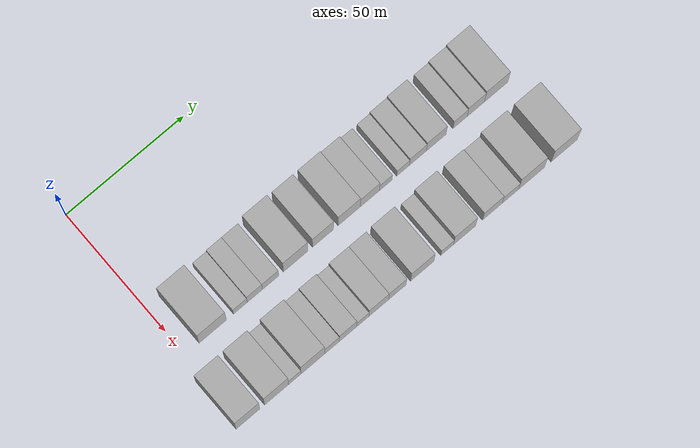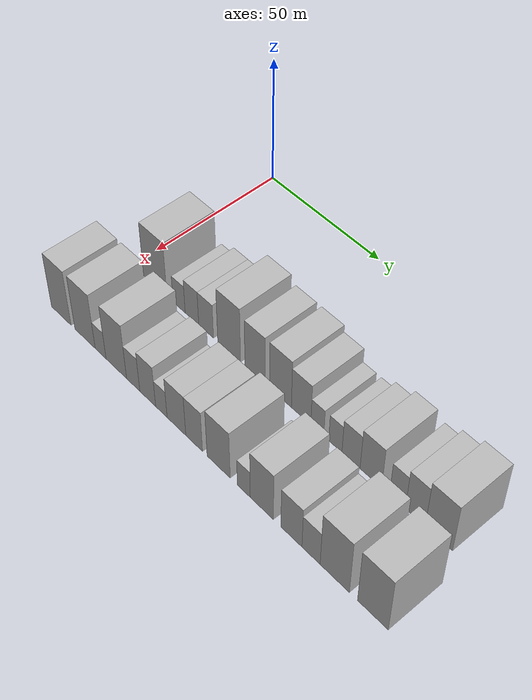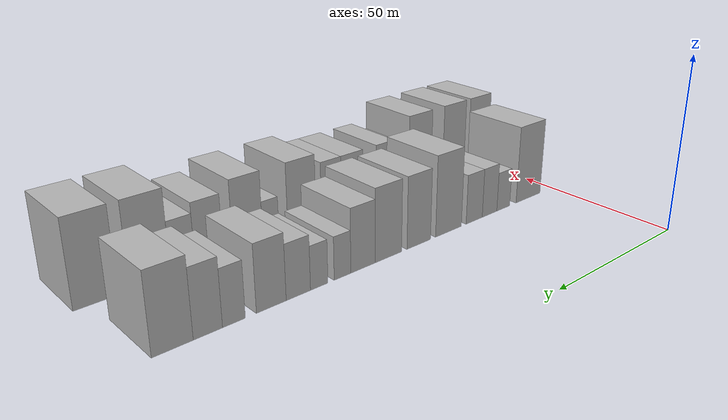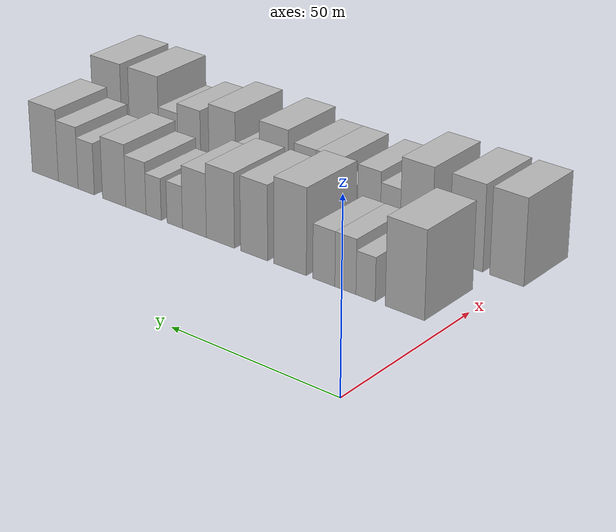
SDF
<sdf version="1.6">
 <world name="default">
  <model name="building_32">
   <static>1</static>
   <pose>50.0000 11.7142 0 0.000000 0.000000 0.000000</pose>
   <link name="link">
    <pose>0 0 12.00 0 0 0</pose>
    <collision name="collision"><geometry><box><size>20.0000 11.5697 24.0000</size></box></geometry></collision>
    <visual name="visual">
     <cast_shadows>0</cast_shadows>
     <geometry><box><size>20.0000 11.5697 24.0000</size></box></geometry>
     <material>
      <script>
       <uri>model://HANNAS_wall/materials/scripts</uri>
       <uri>model://HANNAS_wall/materials/textures</uri>
       <name>vrc/HANNAS_wall</name>
      </script>
     </material>
    </visual>
   </link>
  </model>
  <model name="building_33">
   <static>1</static>
   <pose>50.0000 23.4167 0 0.000000 0.000000 0.000000</pose>
   <link name="link">
    <pose>0 0 6.00 0 0 0</pose>
    <collision name="collision"><geometry><box><size>20.0000 5.8353 12.0000</size></box></geometry></collision>
    <visual name="visual">
     <cast_shadows>0</cast_shadows>
     <geometry><box><size>20.0000 5.8353 12.0000</size></box></geometry>
     <material>
      <script>
       <uri>model://HANNAS_wall/materials/scripts</uri>
       <uri>model://HANNAS_wall/materials/textures</uri>
       <name>vrc/HANNAS_wall</name>
      </script>
     </material>
    </visual>
   </link>
  </model>
  <model name="building_34">
   <static>1</static>
   <pose>50.0000 29.5625 0 0.000000 0.000000 0.000000</pose>
   <link name="link">
    <pose>0 0 7.50 0 0 0</pose>
    <collision name="collision"><geometry><box><size>20.0000 6.4564 15.0000</size></box></geometry></collision>
    <visual name="visual">
     <cast_shadows>0</cast_shadows>
     <geometry><box><size>20.0000 6.4564 15.0000</size></box></geometry>
     <material>
      <script>
       <uri>model://HANNAS_wall/materials/scripts</uri>
       <uri>model://HANNAS_wall/materials/textures</uri>
       <name>vrc/HANNAS_wall</name>
      </script>
     </material>
    </visual>
   </link>
  </model>
  <model name="building_35">
   <static>1</static>
   <pose>50.0000 36.2377 0 0.000000 0.000000 0.000000</pose>
   <link name="link">
    <pose>0 0 7.50 0 0 0</pose>
    <collision name="collision"><geometry><box><size>20.0000 6.8939 15.0000</size></box></geometry></collision>
    <visual name="visual">
     <cast_shadows>0</cast_shadows>
     <geometry><box><size>20.0000 6.8939 15.0000</size></box></geometry>
     <material>
      <script>
       <uri>model://HANNAS_wall/materials/scripts</uri>
       <uri>model://HANNAS_wall/materials/textures</uri>
       <name>vrc/HANNAS_wall</name>
      </script>
     </material>
    </visual>
   </link>
  </model>
  <model name="building_36">
   <static>1</static>
   <pose>50.0000 46.8793 0 0.000000 0.000000 0.000000</pose>
   <link name="link">
    <pose>0 0 12.00 0 0 0</pose>
    <collision name="collision"><geometry><box><size>20.0000 10.3893 24.0000</size></box></geometry></collision>
    <visual name="visual">
     <cast_shadows>0</cast_shadows>
     <geometry><box><size>20.0000 10.3893 24.0000</size></box></geometry>
     <material>
      <script>
       <uri>model://HANNAS_wall/materials/scripts</uri>
       <uri>model://HANNAS_wall/materials/textures</uri>
       <name>vrc/HANNAS_wall</name>
      </script>
     </material>
    </visual>
   </link>
  </model>
  <model name="building_37">
   <static>1</static>
   <pose>50.0000 58.5164 0 0.000000 0.000000 0.000000</pose>
   <link name="link">
    <pose>0 0 10.50 0 0 0</pose>
    <collision name="collision"><geometry><box><size>20.0000 8.8849 21.0000</size></box></geometry></collision>
    <visual name="visual">
     <cast_shadows>0</cast_shadows>
     <geometry><box><size>20.0000 8.8849 21.0000</size></box></geometry>
     <material>
      <script>
       <uri>model://HANNAS_wall/materials/scripts</uri>
       <uri>model://HANNAS_wall/materials/textures</uri>
       <name>vrc/HANNAS_wall</name>
      </script>
     </material>
    </visual>
   </link>
  </model>
  <model name="building_38">
   <static>1</static>
   <pose>50.0000 69.6701 0 0.000000 0.000000 0.000000</pose>
   <link name="link">
    <pose>0 0 10.50 0 0 0</pose>
    <collision name="collision"><geometry><box><size>20.0000 9.4225 21.0000</size></box></geometry></collision>
    <visual name="visual">
     <cast_shadows>0</cast_shadows>
     <geometry><box><size>20.0000 9.4225 21.0000</size></box></geometry>
     <material>
      <script>
       <uri>model://HANNAS_wall/materials/scripts</uri>
       <uri>model://HANNAS_wall/materials/textures</uri>
       <name>vrc/HANNAS_wall</name>
      </script>
     </material>
    </visual>
   </link>
  </model>
  <model name="building_39">
   <static>1</static>
   <pose>50.0000 78.4824 0 0.000000 0.000000 0.000000</pose>
   <link name="link">
    <pose>0 0 9.00 0 0 0</pose>
    <collision name="collision"><geometry><box><size>20.0000 8.2021 18.0000</size></box></geometry></collision>
    <visual name="visual">
     <cast_shadows>0</cast_shadows>
     <geometry><box><size>20.0000 8.2021 18.0000</size></box></geometry>
     <material>
      <script>
       <uri>model://HANNAS_wall/materials/scripts</uri>
       <uri>model://HANNAS_wall/materials/textures</uri>
       <name>vrc/HANNAS_wall</name>
      </script>
     </material>
    </visual>
   </link>
  </model>
  <model name="building_40">
   <static>1</static>
   <pose>50.0000 85.2810 0 0.000000 0.000000 0.000000</pose>
   <link name="link">
    <pose>0 0 6.00 0 0 0</pose>
    <collision name="collision"><geometry><box><size>20.0000 5.3951 12.0000</size></box></geometry></collision>
    <visual name="visual">
     <cast_shadows>0</cast_shadows>
     <geometry><box><size>20.0000 5.3951 12.0000</size></box></geometry>
     <material>
      <script>
       <uri>model://HANNAS_wall/materials/scripts</uri>
       <uri>model://HANNAS_wall/materials/textures</uri>
       <name>vrc/HANNAS_wall</name>
      </script>
     </material>
    </visual>
   </link>
  </model>
  <model name="building_41">
   <static>1</static>
   <pose>50.0000 92.6717 0 0.000000 0.000000 0.000000</pose>
   <link name="link">
    <pose>0 0 6.00 0 0 0</pose>
    <collision name="collision"><geometry><box><size>20.0000 5.3864 12.0000</size></box></geometry></collision>
    <visual name="visual">
     <cast_shadows>0</cast_shadows>
     <geometry><box><size>20.0000 5.3864 12.0000</size></box></geometry>
     <material>
      <script>
       <uri>model://HANNAS_wall/materials/scripts</uri>
       <uri>model://HANNAS_wall/materials/textures</uri>
       <name>vrc/HANNAS_wall</name>
      </script>
     </material>
    </visual>
   </link>
  </model>
  <model name="building_42">
   <static>1</static>
   <pose>50.0000 98.9908 0 0.000000 0.000000 0.000000</pose>
   <link name="link">
    <pose>0 0 7.50 0 0 0</pose>
    <collision name="collision"><geometry><box><size>20.0000 7.2517 15.0000</size></box></geometry></collision>
    <visual name="visual">
     <cast_shadows>0</cast_shadows>
     <geometry><box><size>20.0000 7.2517 15.0000</size></box></geometry>
     <material>
      <script>
       <uri>model://HANNAS_wall/materials/scripts</uri>
       <uri>model://HANNAS_wall/materials/textures</uri>
       <name>vrc/HANNAS_wall</name>
      </script>
     </material>
    </visual>
   </link>
  </model>
  <model name="building_43">
   <static>1</static>
   <pose>50.0000 106.8519 0 0.000000 0.000000 0.000000</pose>
   <link name="link">
    <pose>0 0 9.00 0 0 0</pose>
    <collision name="collision"><geometry><box><size>20.0000 8.4705 18.0000</size></box></geometry></collision>
    <visual name="visual">
     <cast_shadows>0</cast_shadows>
     <geometry><box><size>20.0000 8.4705 18.0000</size></box></geometry>
     <material>
      <script>
       <uri>model://HANNAS_wall/materials/scripts</uri>
       <uri>model://HANNAS_wall/materials/textures</uri>
       <name>vrc/HANNAS_wall</name>
      </script>
     </material>
    </visual>
   </link>
  </model>
  <model name="building_44">
   <static>1</static>
   <pose>50.0000 117.1174 0 0.000000 0.000000 0.000000</pose>
   <link name="link">
    <pose>0 0 7.50 0 0 0</pose>
    <collision name="collision"><geometry><box><size>20.0000 6.0605 15.0000</size></box></geometry></collision>
    <visual name="visual">
     <cast_shadows>0</cast_shadows>
     <geometry><box><size>20.0000 6.0605 15.0000</size></box></geometry>
     <material>
      <script>
       <uri>model://HANNAS_wall/materials/scripts</uri>
       <uri>model://HANNAS_wall/materials/textures</uri>
       <name>vrc/HANNAS_wall</name>
      </script>
     </material>
    </visual>
   </link>
  </model>
  <model name="building_45">
   <static>1</static>
   <pose>50.0000 123.8608 0 0.000000 0.000000 0.000000</pose>
   <link name="link">
    <pose>0 0 9.00 0 0 0</pose>
    <collision name="collision"><geometry><box><size>20.0000 7.4264 18.0000</size></box></geometry></collision>
    <visual name="visual">
     <cast_shadows>0</cast_shadows>
     <geometry><box><size>20.0000 7.4264 18.0000</size></box></geometry>
     <material>
      <script>
       <uri>model://HANNAS_wall/materials/scripts</uri>
       <uri>model://HANNAS_wall/materials/textures</uri>
       <name>vrc/HANNAS_wall</name>
      </script>
     </material>
    </visual>
   </link>
  </model>
  <model name="building_46">
   <static>1</static>
   <pose>50.0000 132.5873 0 0.000000 0.000000 0.000000</pose>
   <link name="link">
    <pose>0 0 10.50 0 0 0</pose>
    <collision name="collision"><geometry><box><size>20.0000 10.0266 21.0000</size></box></geometry></collision>
    <visual name="visual">
     <cast_shadows>0</cast_shadows>
     <geometry><box><size>20.0000 10.0266 21.0000</size></box></geometry>
     <material>
      <script>
       <uri>model://HANNAS_wall/materials/scripts</uri>
       <uri>model://HANNAS_wall/materials/textures</uri>
       <name>vrc/HANNAS_wall</name>
      </script>
     </material>
    </visual>
   </link>
  </model>
  <model name="building_90">
   <static>1</static>
   <pose>79.0000 2.0427 0 0.000000 0.000000 0.000000</pose>
   <link name="link">
    <pose>0 0 12.00 0 0 0</pose>
    <collision name="collision"><geometry><box><size>20.0000 10.0423 24.0000</size></box></geometry></collision>
    <visual name="visual">
     <cast_shadows>0</cast_shadows>
     <geometry><box><size>20.0000 10.0423 24.0000</size></box></geometry>
     <material>
      <script>
       <uri>model://HANNAS_wall/materials/scripts</uri>
       <uri>model://HANNAS_wall/materials/textures</uri>
       <name>vrc/HANNAS_wall</name>
      </script>
     </material>
    </visual>
   </link>
  </model>
  <model name="building_91">
   <static>1</static>
   <pose>79.0000 14.1333 0 0.000000 0.000000 0.000000</pose>
   <link name="link">
    <pose>0 0 12.00 0 0 0</pose>
    <collision name="collision"><geometry><box><size>20.0000 10.1388 24.0000</size></box></geometry></collision>
    <visual name="visual">
     <cast_shadows>0</cast_shadows>
     <geometry><box><size>20.0000 10.1388 24.0000</size></box></geometry>
     <material>
      <script>
       <uri>model://HANNAS_wall/materials/scripts</uri>
       <uri>model://HANNAS_wall/materials/textures</uri>
       <name>vrc/HANNAS_wall</name>
      </script>
     </material>
    </visual>
   </link>
  </model>
  <model name="building_92">
   <static>1</static>
   <pose>79.0000 21.8661 0 0.000000 0.000000 0.000000</pose>
   <link name="link">
    <pose>0 0 6.00 0 0 0</pose>
    <collision name="collision"><geometry><box><size>20.0000 5.3268 12.0000</size></box></geometry></collision>
    <visual name="visual">
     <cast_shadows>0</cast_shadows>
     <geometry><box><size>20.0000 5.3268 12.0000</size></box></geometry>
     <material>
      <script>
       <uri>model://HANNAS_wall/materials/scripts</uri>
       <uri>model://HANNAS_wall/materials/textures</uri>
       <name>vrc/HANNAS_wall</name>
      </script>
     </material>
    </visual>
   </link>
  </model>
  <model name="building_93">
   <static>1</static>
   <pose>79.0000 29.5009 0 0.000000 0.000000 0.000000</pose>
   <link name="link">
    <pose>0 0 12.00 0 0 0</pose>
    <collision name="collision"><geometry><box><size>20.0000 9.9429 24.0000</size></box></geometry></collision>
    <visual name="visual">
     <cast_shadows>0</cast_shadows>
     <geometry><box><size>20.0000 9.9429 24.0000</size></box></geometry>
     <material>
      <script>
       <uri>model://HANNAS_wall/materials/scripts</uri>
       <uri>model://HANNAS_wall/materials/textures</uri>
       <name>vrc/HANNAS_wall</name>
      </script>
     </material>
    </visual>
   </link>
  </model>
  <model name="building_94">
   <static>1</static>
   <pose>79.0000 37.6089 0 0.000000 0.000000 0.000000</pose>
   <link name="link">
    <pose>0 0 7.50 0 0 0</pose>
    <collision name="collision"><geometry><box><size>20.0000 6.2732 15.0000</size></box></geometry></collision>
    <visual name="visual">
     <cast_shadows>0</cast_shadows>
     <geometry><box><size>20.0000 6.2732 15.0000</size></box></geometry>
     <material>
      <script>
       <uri>model://HANNAS_wall/materials/scripts</uri>
       <uri>model://HANNAS_wall/materials/textures</uri>
       <name>vrc/HANNAS_wall</name>
      </script>
     </material>
    </visual>
   </link>
  </model>
  <model name="building_95">
   <static>1</static>
   <pose>79.0000 44.4142 0 0.000000 0.000000 0.000000</pose>
   <link name="link">
    <pose>0 0 9.00 0 0 0</pose>
    <collision name="collision"><geometry><box><size>20.0000 7.3374 18.0000</size></box></geometry></collision>
    <visual name="visual">
     <cast_shadows>0</cast_shadows>
     <geometry><box><size>20.0000 7.3374 18.0000</size></box></geometry>
     <material>
      <script>
       <uri>model://HANNAS_wall/materials/scripts</uri>
       <uri>model://HANNAS_wall/materials/textures</uri>
       <name>vrc/HANNAS_wall</name>
      </script>
     </material>
    </visual>
   </link>
  </model>
  <model name="building_96">
   <static>1</static>
   <pose>79.0000 50.7081 0 0.000000 0.000000 0.000000</pose>
   <link name="link">
    <pose>0 0 6.00 0 0 0</pose>
    <collision name="collision"><geometry><box><size>20.0000 5.2504 12.0000</size></box></geometry></collision>
    <visual name="visual">
     <cast_shadows>0</cast_shadows>
     <geometry><box><size>20.0000 5.2504 12.0000</size></box></geometry>
     <material>
      <script>
       <uri>model://HANNAS_wall/materials/scripts</uri>
       <uri>model://HANNAS_wall/materials/textures</uri>
       <name>vrc/HANNAS_wall</name>
      </script>
     </material>
    </visual>
   </link>
  </model>
  <model name="building_97">
   <static>1</static>
   <pose>79.0000 57.5254 0 0.000000 0.000000 0.000000</pose>
   <link name="link">
    <pose>0 0 9.00 0 0 0</pose>
    <collision name="collision"><geometry><box><size>20.0000 8.3843 18.0000</size></box></geometry></collision>
    <visual name="visual">
     <cast_shadows>0</cast_shadows>
     <geometry><box><size>20.0000 8.3843 18.0000</size></box></geometry>
     <material>
      <script>
       <uri>model://HANNAS_wall/materials/scripts</uri>
       <uri>model://HANNAS_wall/materials/textures</uri>
       <name>vrc/HANNAS_wall</name>
      </script>
     </material>
    </visual>
   </link>
  </model>
  <model name="building_98">
   <static>1</static>
   <pose>79.0000 65.3954 0 0.000000 0.000000 0.000000</pose>
   <link name="link">
    <pose>0 0 9.00 0 0 0</pose>
    <collision name="collision"><geometry><box><size>20.0000 7.3556 18.0000</size></box></geometry></collision>
    <visual name="visual">
     <cast_shadows>0</cast_shadows>
     <geometry><box><size>20.0000 7.3556 18.0000</size></box></geometry>
     <material>
      <script>
       <uri>model://HANNAS_wall/materials/scripts</uri>
       <uri>model://HANNAS_wall/materials/textures</uri>
       <name>vrc/HANNAS_wall</name>
      </script>
     </material>
    </visual>
   </link>
  </model>
  <model name="building_99">
   <static>1</static>
   <pose>79.0000 76.0162 0 0.000000 0.000000 0.000000</pose>
   <link name="link">
    <pose>0 0 10.50 0 0 0</pose>
    <collision name="collision"><geometry><box><size>20.0000 9.8861 21.0000</size></box></geometry></collision>
    <visual name="visual">
     <cast_shadows>0</cast_shadows>
     <geometry><box><size>20.0000 9.8861 21.0000</size></box></geometry>
     <material>
      <script>
       <uri>model://HANNAS_wall/materials/scripts</uri>
       <uri>model://HANNAS_wall/materials/textures</uri>
       <name>vrc/HANNAS_wall</name>
      </script>
     </material>
    </visual>
   </link>
  </model>
  <model name="building_100">
   <static>1</static>
   <pose>79.0000 86.6463 0 0.000000 0.000000 0.000000</pose>
   <link name="link">
    <pose>0 0 6.00 0 0 0</pose>
    <collision name="collision"><geometry><box><size>20.0000 5.3741 12.0000</size></box></geometry></collision>
    <visual name="visual">
     <cast_shadows>0</cast_shadows>
     <geometry><box><size>20.0000 5.3741 12.0000</size></box></geometry>
     <material>
      <script>
       <uri>model://HANNAS_wall/materials/scripts</uri>
       <uri>model://HANNAS_wall/materials/textures</uri>
       <name>vrc/HANNAS_wall</name>
      </script>
     </material>
    </visual>
   </link>
  </model>
  <model name="building_101">
   <static>1</static>
   <pose>79.0000 94.0636 0 0.000000 0.000000 0.000000</pose>
   <link name="link">
    <pose>0 0 10.50 0 0 0</pose>
    <collision name="collision"><geometry><box><size>20.0000 9.4604 21.0000</size></box></geometry></collision>
    <visual name="visual">
     <cast_shadows>0</cast_shadows>
     <geometry><box><size>20.0000 9.4604 21.0000</size></box></geometry>
     <material>
      <script>
       <uri>model://HANNAS_wall/materials/scripts</uri>
       <uri>model://HANNAS_wall/materials/textures</uri>
       <name>vrc/HANNAS_wall</name>
      </script>
     </material>
    </visual>
   </link>
  </model>
  <model name="building_102">
   <static>1</static>
   <pose>79.0000 105.9681 0 0.000000 0.000000 0.000000</pose>
   <link name="link">
    <pose>0 0 9.00 0 0 0</pose>
    <collision name="collision"><geometry><box><size>20.0000 8.3485 18.0000</size></box></geometry></collision>
    <visual name="visual">
     <cast_shadows>0</cast_shadows>
     <geometry><box><size>20.0000 8.3485 18.0000</size></box></geometry>
     <material>
      <script>
       <uri>model://HANNAS_wall/materials/scripts</uri>
       <uri>model://HANNAS_wall/materials/textures</uri>
       <name>vrc/HANNAS_wall</name>
      </script>
     </material>
    </visual>
   </link>
  </model>
  <model name="building_103">
   <static>1</static>
   <pose>79.0000 113.6608 0 0.000000 0.000000 0.000000</pose>
   <link name="link">
    <pose>0 0 7.50 0 0 0</pose>
    <collision name="collision"><geometry><box><size>20.0000 7.0369 15.0000</size></box></geometry></collision>
    <visual name="visual">
     <cast_shadows>0</cast_shadows>
     <geometry><box><size>20.0000 7.0369 15.0000</size></box></geometry>
     <material>
      <script>
       <uri>model://HANNAS_wall/materials/scripts</uri>
       <uri>model://HANNAS_wall/materials/textures</uri>
       <name>vrc/HANNAS_wall</name>
      </script>
     </material>
    </visual>
   </link>
  </model>
  <model name="building_104">
   <static>1</static>
   <pose>79.0000 122.7035 0 0.000000 0.000000 0.000000</pose>
   <link name="link">
    <pose>0 0 12.00 0 0 0</pose>
    <collision name="collision"><geometry><box><size>20.0000 11.0485 24.0000</size></box></geometry></collision>
    <visual name="visual">
     <cast_shadows>0</cast_shadows>
     <geometry><box><size>20.0000 11.0485 24.0000</size></box></geometry>
     <material>
      <script>
       <uri>model://HANNAS_wall/materials/scripts</uri>
       <uri>model://HANNAS_wall/materials/textures</uri>
       <name>vrc/HANNAS_wall</name>
      </script>
     </material>
    </visual>
   </link>
  </model>
  <model name="building_105">
   <static>1</static>
   <pose>79.0000 136.8146 0 0.000000 0.000000 0.000000</pose>
   <link name="link">
    <pose>0 0 12.00 0 0 0</pose>
    <collision name="collision"><geometry><box><size>20.0000 11.1739 24.0000</size></box></geometry></collision>
    <visual name="visual">
     <cast_shadows>0</cast_shadows>
     <geometry><box><size>20.0000 11.1739 24.0000</size></box></geometry>
     <material>
      <script>
       <uri>model://HANNAS_wall/materials/scripts</uri>
       <uri>model://HANNAS_wall/materials/textures</uri>
       <name>vrc/HANNAS_wall</name>
      </script>
     </material>
    </visual>
   </link>
  </model>
 </world>
</sdf>
